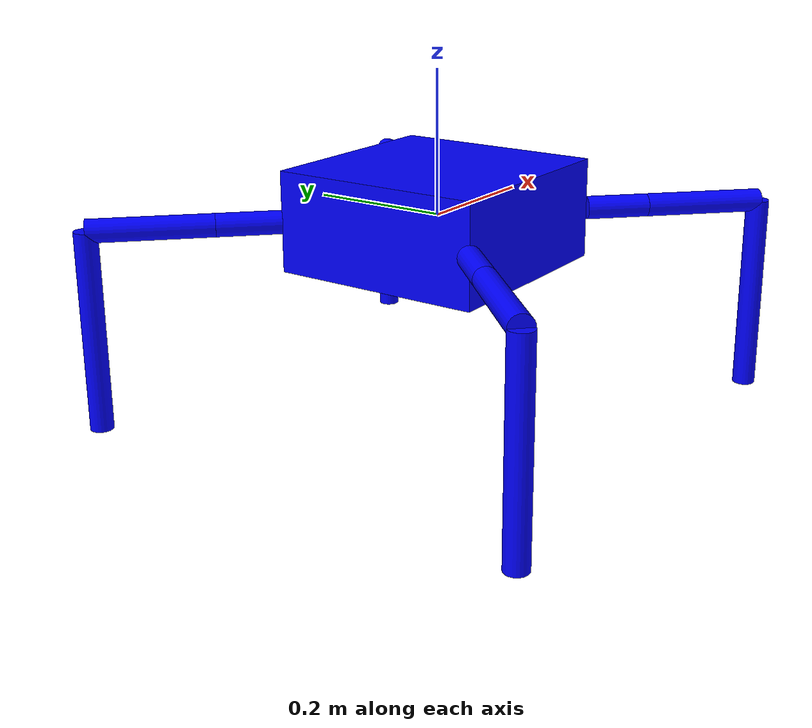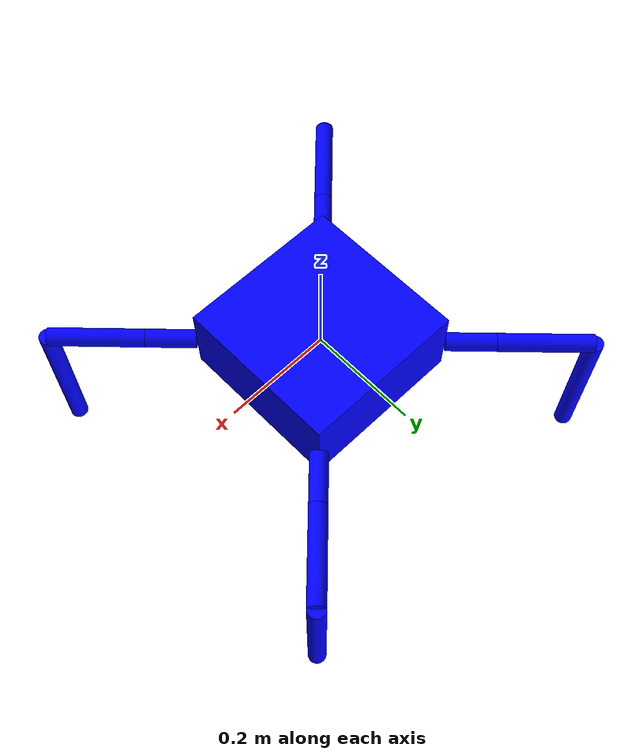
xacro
<?xml version="1.0"?>
<robot xmlns:xacro="http://www.ros.org/wiki/xacro" name="quad2">

<xacro:property name = "deg_to_rad" value ="0.0174533"/>
<xacro:property name = "link1_vert_angle" value="0.785"/>

<xacro:property name = "scale_length" value="2"/>
<xacro:property name = "scale_mass" value="10"/>

<xacro:property name = "body_len" value="${scale_length*0.15}"/>
<xacro:property name = "body_width"  value="${scale_length*0.15}"/>
<xacro:property name = "body_height" value="${scale_length*0.07}"/>
<!--xacro:property name = "mass_body"   value="${scale_mass*0.6}"/-->
<xacro:property name = "mass_body"   value="${scale_mass*1}"/>

<xacro:property name = "link1_len" value="${scale_length*0.044}"/>
<xacro:property name = "mass_link1" value="${scale_mass*0.09}"/>

<xacro:property name = "link2_len" value="${scale_length*0.084}"/>
<xacro:property name = "mass_link2" value="${scale_mass*0.08}"/>

<xacro:property name = "link3_len"  value="${scale_length*0.14}"/>
<!--xacro:property name = "mass_link3" value="${scale_mass*0.06}"/-->
<xacro:property name = "mass_link3" value="${scale_mass*0.1}"/>

<xacro:property name = "leg_rad"   value="${scale_length*0.008}"/>

<material name = "red">
<color rgba = "1 0 0 1"/>
</material>

<material name = "blue">
<color rgba = "0 0 1 1"/>
</material>

<link name = "world"/>

<joint name = "dummy_link" type="floating">
  <parent link = "world"/>
  <child link = "base_link"/>
</joint>

<link name = "base_link">

<collision>
  <geometry>
  <box size="${body_len} ${body_width} ${body_height}"/>
  </geometry>
</collision>

<visual>
<geometry>
<box size="${body_len} ${body_width} ${body_height}"/>
</geometry>
<material name="red">
<color rgba = "0 0 1 1"/>
</material>
</visual>

<inertial>
  <mass value="${mass_body}"/>
  <inertia
    ixx="${(1/12)*mass_body*(body_len*body_len + body_height*body_height)}" ixy="0.0" ixz="0.0"
    iyy="${(1/12)*mass_body*(body_len*body_len + body_height*body_height)}" iyz="0.0"
    izz="${(1/12)*mass_body*(body_len*body_len + body_width*body_width)}"/>
</inertial>

</link>

<gazebo reference="base_link">
  <kp>100000000.0</kp>
<kd>100000000.0</kd>
  <mu1>1000000</mu1>
  <mu2>1000000</mu2>
  <material>Gazebo/Red</material>
</gazebo>

<xacro:macro name="leg" params="suffix front left quadrant">

<link name = "link1_${suffix}">

<collision>
  <origin rpy = "0 ${90*deg_to_rad} 0" xyz = "${link1_len/2} 0 0"/>
  <geometry>
  <cylinder length="${link1_len}" radius="${leg_rad}"/>
  </geometry>

</collision>

<visual>
<geometry>
<cylinder length="${link1_len}" radius="${leg_rad}"/>
</geometry>
<origin rpy = "0 ${90*deg_to_rad} 0" xyz = "${link1_len/2} 0 0"/>
<material name = "blue"/>
</visual>

<inertial>
    <origin rpy = "0 0 0" xyz = "${link1_len/2} 0 0"/>
  <mass value="${mass_link1}"/>
  <inertia
    ixx="${(1/2)*mass_link1*leg_rad*leg_rad}" ixy="0.0" ixz="0.0"
    iyy="${(1/12)*mass_link1*(3*leg_rad*leg_rad + link1_len*link1_len)}" iyz="0.0"
    izz="${(1/12)*mass_link1*(3*leg_rad*leg_rad + link1_len*link1_len)}"/>
</inertial>

</link>

<gazebo reference="link1_${suffix}">
  <kp>100000000.0</kp>
<kd>10000000.0</kd>
  <mu1>1000000</mu1>
  <mu2>1000000</mu2>
  <material>Gazebo/Blue</material>
</gazebo>

<joint name = "joint1_${suffix}" type="revolute">
<origin rpy = "0 0 ${link1_vert_angle*(2*quadrant-1)}" xyz = "${front*body_width/2} ${left*body_len/2} 0"/>
<axis xyz = "0 0 -1"/>
<limit effort="200.0" lower="-1.57075" upper="1.57075" velocity="4"/>
<parent link = "base_link"/>
<child link="link1_${suffix}"/>
  <dynamics damping ="10.0"/>
</joint>

<link name = "link2_${suffix}">

<collision>
  <geometry>
  <cylinder length="${link2_len}" radius="${leg_rad}"/>
  </geometry>
  <origin rpy = "0 -${90*deg_to_rad} 0" xyz = "${link2_len/2} 0 0"/>
</collision>

<visual>
<geometry>
<cylinder length="${link2_len}" radius="${leg_rad}"/>
</geometry>
<origin rpy = "0 -${90*deg_to_rad} 0" xyz = "${link2_len/2} 0 0"/>
<material name = "blue"/>
</visual>

<inertial>
  <origin rpy = "0 0 0" xyz = "${link2_len/2} 0 0"/>
  <mass value="${mass_link2}"/>
  <inertia
    ixx="${(1/2)*mass_link2*leg_rad*leg_rad}" ixy="0.0" ixz="0.0"
    iyy="${(1/12)*mass_link2*(3*leg_rad*leg_rad + link2_len*link2_len)}" iyz="0.0"
    izz="${(1/12)*mass_link2*(3*leg_rad*leg_rad + link2_len*link2_len)}"/>
</inertial>

</link>

<gazebo reference="link2_${suffix}">
  <kp>100000000.0</kp>
<kd>10000000.0</kd>
  <mu1>1000000</mu1>
  <mu2>1000000</mu2>
  <material>Gazebo/Blue</material>
</gazebo>

<joint name = "joint2_${suffix}" type="revolute">
<origin rpy = "${90*deg_to_rad} 0 0" xyz = "${link1_len} 0 0"/>
<axis xyz = "0 0 -1"/>
<limit effort="200.0" lower="-1.57075" upper="1.57075" velocity="4"/>
<parent link = "link1_${suffix}"/>
<child link="link2_${suffix}"/>
  <dynamics damping ="10.0"/>
</joint>

<link name = "link3_${suffix}">

<collision>
  <geometry>
  <cylinder length="${link3_len}" radius="${leg_rad}"/>
  </geometry>
  <origin rpy = "0 -${90*deg_to_rad} 0" xyz = "${link3_len/2} 0 0"/>
</collision>

<visual>
<geometry>
<cylinder length="${link3_len}" radius="${leg_rad}"/>
</geometry>
<origin rpy = "0 -${90*deg_to_rad} 0" xyz = "${link3_len/2} 0 0"/>
<material name = "blue"/>
</visual>

<inertial>
  <origin rpy = "0 0 0" xyz = "${link3_len/2} 0 0"/>
  <mass value="${mass_link3}"/>
  <inertia
    ixx="${(1/2)*mass_link3*leg_rad*leg_rad}" ixy="0.0" ixz="0.0"
    iyy="${(1/12)*mass_link3*(3*leg_rad*leg_rad + link3_len*link3_len)}" iyz="0.0"
    izz="${(1/12)*mass_link3*(3*leg_rad*leg_rad + link3_len*link3_len)}"/>
</inertial>

</link>

<gazebo reference="link3_${suffix}">
  <kp>100000000.0</kp>
<kd>10000000.0</kd>
  <mu1>1000000</mu1>
  <mu2>1000000</mu2>
  <material>Gazebo/Blue</material>
</gazebo>

<joint name = "joint3_${suffix}" type="revolute">
<origin rpy = "0 0 -${90*deg_to_rad}" xyz = "${link2_len} 0 0"/>
<axis xyz = "0 0 -1"/>
<limit effort="200.0" lower="-3.14" upper="1.57075" velocity="4"/>
<parent link = "link2_${suffix}"/>
<child link="link3_${suffix}"/>
  <dynamics damping ="10.0"/>
</joint>

</xacro:macro>

<xacro:macro name="transmission_block" params="joint_name">
 <transmission name="tran_${joint_name}">
   <type>transmission_interface/SimpleTransmission</type>
   <joint name="${joint_name}">
     <hardwareInterface>hardware_interface/PositionJointInterface</hardwareInterface>
   </joint>
   <actuator name="motor_${joint_name}">
     <hardwareInterface>hardware_interface/PositionJointInterface</hardwareInterface>
     <mechanicalReduction>1</mechanicalReduction>
   </actuator>
 </transmission>
</xacro:macro>

<xacro:leg suffix="lf" front="1" left="1" quadrant="1"/>
<xacro:leg suffix="lr" front="-1" left="1" quadrant="2"/>
<xacro:leg suffix="rr" front="-1" left="-1" quadrant="3"/>
<xacro:leg suffix="rf" front="1" left="-1" quadrant="4"/>

<xacro:transmission_block joint_name = "joint1_lf"/>
<xacro:transmission_block joint_name = "joint1_lr"/>
<xacro:transmission_block joint_name = "joint1_rr"/>
<xacro:transmission_block joint_name = "joint1_rf"/>

<xacro:transmission_block joint_name = "joint2_lf"/>
<xacro:transmission_block joint_name = "joint2_lr"/>
<xacro:transmission_block joint_name = "joint2_rr"/>
<xacro:transmission_block joint_name = "joint2_rf"/>

<xacro:transmission_block joint_name = "joint3_lf"/>
<xacro:transmission_block joint_name = "joint3_lr"/>
<xacro:transmission_block joint_name = "joint3_rr"/>
<xacro:transmission_block joint_name = "joint3_rf"/>

<!--ROS Control plugin is required for ros to communicate to Gazebo for
    controlling the robot-->
<gazebo>
  <plugin name="gazebo_ros_control" filename="libgazebo_ros_control.so">
        <legacyModeNS>true</legacyModeNS>
<!--To avoid the legacyMode Warning-->
<!--https://answers.ros.org/question/292444/gazebo_ros_control-plugin-gazeboroscontrolplugin-missing-legacymodens-defaultrobothwsim/-->
  </plugin>
</gazebo>

</robot>
